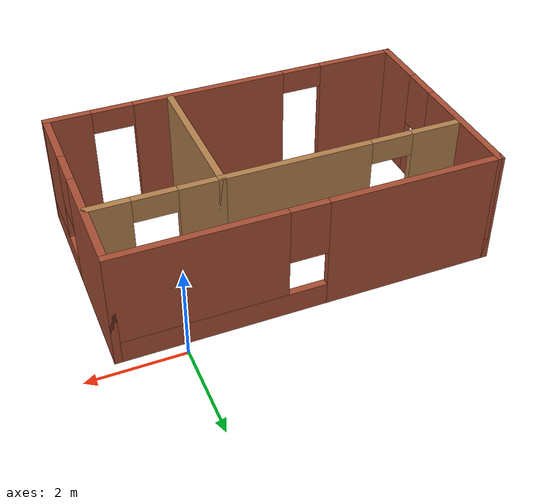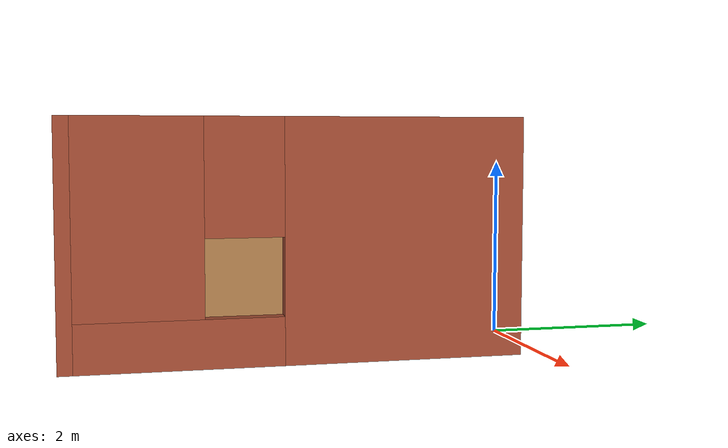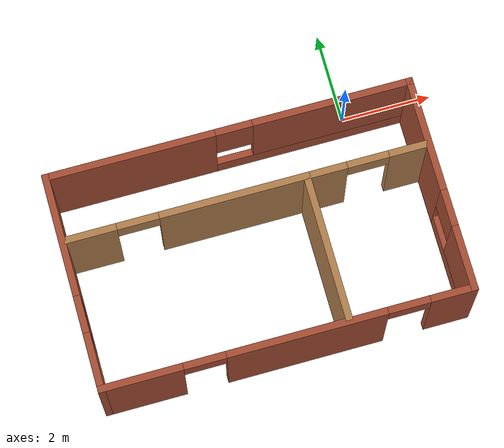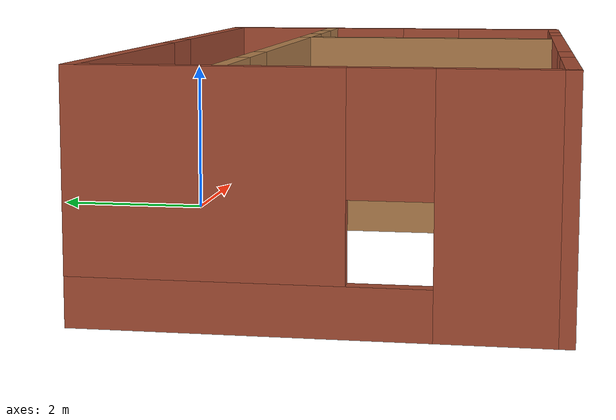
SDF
<?xml version='1.0'?>
<sdf version='1.7'>
  <model name='House'>
    <pose>-2.645 -2.4975 0 0 -0 0</pose>
    <link name='Wall_0'>
      <pose>0 2.1775 0 0 -0 0</pose>
      <visual name='Wall_0_Visual_0'>
        <pose>-2.1475 0 1.25 0 -0 0</pose>
        <geometry>
          <box>
            <size>3.705 0.15 2.5</size>
          </box>
        </geometry>
        <material>
          <script>
            <uri>file://media/materials/scripts/gazebo.material</uri>
            <name>Gazebo/Bricks</name>
          </script>
          <ambient>1 1 1 1</ambient>
        </material>
        <meta>
          <layer>0</layer>
        </meta>
      </visual>
      <collision name='Wall_0_Collision_0'>
        <geometry>
          <box>
            <size>3.705 0.15 2.5</size>
          </box>
        </geometry>
        <pose>-2.1475 0 1.25 0 -0 0</pose>
      </collision>
      <visual name='Wall_0_Visual_1'>
        <pose>1.8525 0 0.25 0 -0 0</pose>
        <geometry>
          <box>
            <size>4.295 0.15 0.5</size>
          </box>
        </geometry>
        <material>
          <script>
            <uri>file://media/materials/scripts/gazebo.material</uri>
            <name>Gazebo/Bricks</name>
          </script>
          <ambient>1 1 1 1</ambient>
        </material>
        <meta>
          <layer>0</layer>
        </meta>
      </visual>
      <collision name='Wall_0_Collision_1'>
        <geometry>
          <box>
            <size>4.295 0.15 0.5</size>
          </box>
        </geometry>
        <pose>1.8525 0 0.25 0 -0 0</pose>
      </collision>
      <visual name='Wall_0_Visual_2'>
        <pose>2.2525 0 1.5 0 -0 0</pose>
        <geometry>
          <box>
            <size>3.495 0.15 2</size>
          </box>
        </geometry>
        <material>
          <script>
            <uri>file://media/materials/scripts/gazebo.material</uri>
            <name>Gazebo/Bricks</name>
          </script>
          <ambient>1 1 1 1</ambient>
        </material>
        <meta>
          <layer>0</layer>
        </meta>
      </visual>
      <collision name='Wall_0_Collision_2'>
        <geometry>
          <box>
            <size>3.495 0.15 2</size>
          </box>
        </geometry>
        <pose>2.2525 0 1.5 0 -0 0</pose>
      </collision>
      <visual name='Wall_0_Visual_3'>
        <pose>0.105 0 1.9 0 -0 0</pose>
        <geometry>
          <box>
            <size>0.8 0.15 1.2</size>
          </box>
        </geometry>
        <material>
          <script>
            <uri>file://media/materials/scripts/gazebo.material</uri>
            <name>Gazebo/Bricks</name>
          </script>
          <ambient>1 1 1 1</ambient>
        </material>
        <meta>
          <layer>0</layer>
        </meta>
      </visual>
      <collision name='Wall_0_Collision_3'>
        <geometry>
          <box>
            <size>0.8 0.15 1.2</size>
          </box>
        </geometry>
        <pose>0.105 0 1.9 0 -0 0</pose>
      </collision>
    </link>
    <link name='Wall_1'>
      <pose>3.925 -0.1225 0 0 -0 -1.5708</pose>
      <visual name='Wall_1_Visual_0'>
        <pose>-1.1125 0 1.25 0 -0 0</pose>
        <geometry>
          <box>
            <size>2.525 0.15 2.5</size>
          </box>
        </geometry>
        <material>
          <script>
            <uri>file://media/materials/scripts/gazebo.material</uri>
            <name>Gazebo/Bricks</name>
          </script>
          <ambient>1 1 1 1</ambient>
        </material>
        <meta>
          <layer>0</layer>
        </meta>
      </visual>
      <collision name='Wall_1_Collision_0'>
        <geometry>
          <box>
            <size>2.525 0.15 2.5</size>
          </box>
        </geometry>
        <pose>-1.1125 0 1.25 0 -0 0</pose>
      </collision>
      <visual name='Wall_1_Visual_1'>
        <pose>1.2625 0 0.25 0 -0 0</pose>
        <geometry>
          <box>
            <size>2.225 0.15 0.5</size>
          </box>
        </geometry>
        <material>
          <script>
            <uri>file://media/materials/scripts/gazebo.material</uri>
            <name>Gazebo/Bricks</name>
          </script>
          <ambient>1 1 1 1</ambient>
        </material>
        <meta>
          <layer>0</layer>
        </meta>
      </visual>
      <collision name='Wall_1_Collision_1'>
        <geometry>
          <box>
            <size>2.225 0.15 0.5</size>
          </box>
        </geometry>
        <pose>1.2625 0 0.25 0 -0 0</pose>
      </collision>
      <visual name='Wall_1_Visual_2'>
        <pose>1.6625 0 1.5 0 -0 0</pose>
        <geometry>
          <box>
            <size>1.425 0.15 2</size>
          </box>
        </geometry>
        <material>
          <script>
            <uri>file://media/materials/scripts/gazebo.material</uri>
            <name>Gazebo/Bricks</name>
          </script>
          <ambient>1 1 1 1</ambient>
        </material>
        <meta>
          <layer>0</layer>
        </meta>
      </visual>
      <collision name='Wall_1_Collision_2'>
        <geometry>
          <box>
            <size>1.425 0.15 2</size>
          </box>
        </geometry>
        <pose>1.6625 0 1.5 0 -0 0</pose>
      </collision>
      <visual name='Wall_1_Visual_3'>
        <pose>0.55 0 1.9 0 -0 0</pose>
        <geometry>
          <box>
            <size>0.8 0.15 1.2</size>
          </box>
        </geometry>
        <material>
          <script>
            <uri>file://media/materials/scripts/gazebo.material</uri>
            <name>Gazebo/Bricks</name>
          </script>
          <ambient>1 1 1 1</ambient>
        </material>
        <meta>
          <layer>0</layer>
        </meta>
      </visual>
      <collision name='Wall_1_Collision_3'>
        <geometry>
          <box>
            <size>0.8 0.15 1.2</size>
          </box>
        </geometry>
        <pose>0.55 0 1.9 0 -0 0</pose>
      </collision>
    </link>
    <link name='Wall_2'>
      <pose>0 -2.4225 0 0 -0 3.14159</pose>
      <visual name='Wall_2_Visual_0'>
        <pose>-3.4975 0 1.25 0 -0 0</pose>
        <geometry>
          <box>
            <size>1.005 0.15 2.5</size>
          </box>
        </geometry>
        <material>
          <script>
            <uri>file://media/materials/scripts/gazebo.material</uri>
            <name>Gazebo/Bricks</name>
          </script>
          <ambient>1 1 1 1</ambient>
        </material>
        <meta>
          <layer>0</layer>
        </meta>
      </visual>
      <collision name='Wall_2_Collision_0'>
        <geometry>
          <box>
            <size>1.005 0.15 2.5</size>
          </box>
        </geometry>
        <pose>-3.4975 0 1.25 0 -0 0</pose>
      </collision>
      <visual name='Wall_2_Visual_1'>
        <pose>-0.39 0 1.25 0 -0 0</pose>
        <geometry>
          <box>
            <size>3.41 0.15 2.5</size>
          </box>
        </geometry>
        <material>
          <script>
            <uri>file://media/materials/scripts/gazebo.material</uri>
            <name>Gazebo/Bricks</name>
          </script>
          <ambient>1 1 1 1</ambient>
        </material>
        <meta>
          <layer>0</layer>
        </meta>
      </visual>
      <collision name='Wall_2_Collision_1'>
        <geometry>
          <box>
            <size>3.41 0.15 2.5</size>
          </box>
        </geometry>
        <pose>-0.39 0 1.25 0 -0 0</pose>
      </collision>
      <visual name='Wall_2_Visual_2'>
        <pose>3.1075 0 1.25 0 -0 0</pose>
        <geometry>
          <box>
            <size>1.785 0.15 2.5</size>
          </box>
        </geometry>
        <material>
          <script>
            <uri>file://media/materials/scripts/gazebo.material</uri>
            <name>Gazebo/Bricks</name>
          </script>
          <ambient>1 1 1 1</ambient>
        </material>
        <meta>
          <layer>0</layer>
        </meta>
      </visual>
      <collision name='Wall_2_Collision_2'>
        <geometry>
          <box>
            <size>1.785 0.15 2.5</size>
          </box>
        </geometry>
        <pose>3.1075 0 1.25 0 -0 0</pose>
      </collision>
      <visual name='Wall_2_Visual_3'>
        <pose>-2.545 0 2.25 0 -0 0</pose>
        <geometry>
          <box>
            <size>0.9 0.15 0.5</size>
          </box>
        </geometry>
        <material>
          <script>
            <uri>file://media/materials/scripts/gazebo.material</uri>
            <name>Gazebo/Bricks</name>
          </script>
          <ambient>1 1 1 1</ambient>
        </material>
        <meta>
          <layer>0</layer>
        </meta>
      </visual>
      <collision name='Wall_2_Collision_3'>
        <geometry>
          <box>
            <size>0.9 0.15 0.5</size>
          </box>
        </geometry>
        <pose>-2.545 0 2.25 0 -0 0</pose>
      </collision>
      <visual name='Wall_2_Visual_4'>
        <pose>1.765 0 2.25 0 -0 0</pose>
        <geometry>
          <box>
            <size>0.9 0.15 0.5</size>
          </box>
        </geometry>
        <material>
          <script>
            <uri>file://media/materials/scripts/gazebo.material</uri>
            <name>Gazebo/Bricks</name>
          </script>
          <ambient>1 1 1 1</ambient>
        </material>
        <meta>
          <layer>0</layer>
        </meta>
      </visual>
      <collision name='Wall_2_Collision_4'>
        <geometry>
          <box>
            <size>0.9 0.15 0.5</size>
          </box>
        </geometry>
        <pose>1.765 0 2.25 0 -0 0</pose>
      </collision>
    </link>
    <link name='Wall_3'>
      <pose>-3.925 -0.1225 0 0 -0 1.5708</pose>
      <visual name='Wall_3_Visual_0'>
        <pose>-1.7375 0 1.25 0 -0 0</pose>
        <geometry>
          <box>
            <size>1.275 0.15 2.5</size>
          </box>
        </geometry>
        <material>
          <script>
            <uri>file://media/materials/scripts/gazebo.material</uri>
            <name>Gazebo/Bricks</name>
          </script>
          <ambient>1 1 1 1</ambient>
        </material>
        <meta>
          <layer>0</layer>
        </meta>
      </visual>
      <collision name='Wall_3_Collision_0'>
        <geometry>
          <box>
            <size>1.275 0.15 2.5</size>
          </box>
        </geometry>
        <pose>-1.7375 0 1.25 0 -0 0</pose>
      </collision>
      <visual name='Wall_3_Visual_1'>
        <pose>0.6375 0 0.25 0 -0 0</pose>
        <geometry>
          <box>
            <size>3.475 0.15 0.5</size>
          </box>
        </geometry>
        <material>
          <script>
            <uri>file://media/materials/scripts/gazebo.material</uri>
            <name>Gazebo/Bricks</name>
          </script>
          <ambient>1 1 1 1</ambient>
        </material>
        <meta>
          <layer>0</layer>
        </meta>
      </visual>
      <collision name='Wall_3_Collision_1'>
        <geometry>
          <box>
            <size>3.475 0.15 0.5</size>
          </box>
        </geometry>
        <pose>0.6375 0 0.25 0 -0 0</pose>
      </collision>
      <visual name='Wall_3_Visual_2'>
        <pose>1.0375 0 1.5 0 -0 0</pose>
        <geometry>
          <box>
            <size>2.675 0.15 2</size>
          </box>
        </geometry>
        <material>
          <script>
            <uri>file://media/materials/scripts/gazebo.material</uri>
            <name>Gazebo/Bricks</name>
          </script>
          <ambient>1 1 1 1</ambient>
        </material>
        <meta>
          <layer>0</layer>
        </meta>
      </visual>
      <collision name='Wall_3_Collision_2'>
        <geometry>
          <box>
            <size>2.675 0.15 2</size>
          </box>
        </geometry>
        <pose>1.0375 0 1.5 0 -0 0</pose>
      </collision>
      <visual name='Wall_3_Visual_3'>
        <pose>-0.7 0 1.9 0 -0 0</pose>
        <geometry>
          <box>
            <size>0.8 0.15 1.2</size>
          </box>
        </geometry>
        <material>
          <script>
            <uri>file://media/materials/scripts/gazebo.material</uri>
            <name>Gazebo/Bricks</name>
          </script>
          <ambient>1 1 1 1</ambient>
        </material>
        <meta>
          <layer>0</layer>
        </meta>
      </visual>
      <collision name='Wall_3_Collision_3'>
        <geometry>
          <box>
            <size>0.8 0.15 1.2</size>
          </box>
        </geometry>
        <pose>-0.7 0 1.9 0 -0 0</pose>
      </collision>
    </link>
    <link name='Wall_5'>
      <collision name='Wall_5_Collision'>
        <geometry>
          <box>
            <size>3.25 0.15 2.5</size>
          </box>
        </geometry>
        <pose>0 0 1.25 0 -0 0</pose>
      </collision>
      <visual name='Wall_5_Visual'>
        <pose>0 0 1.25 0 -0 0</pose>
        <geometry>
          <box>
            <size>3.25 0.15 2.5</size>
          </box>
        </geometry>
        <material>
          <script>
            <uri>file://media/materials/scripts/gazebo.material</uri>
            <name>Gazebo/Wood</name>
          </script>
          <ambient>1 1 1 1</ambient>
        </material>
        <meta>
          <layer>0</layer>
        </meta>
      </visual>
      <pose>1.285 -0.7825 0 0 -0 1.5708</pose>
    </link>
    <link name='Wall_6'>
      <pose>-1.265 0.7675 0 0 -0 3.14159</pose>
      <visual name='Wall_6_Visual_0'>
        <pose>-1.0075 0 1.25 0 -0 0</pose>
        <geometry>
          <box>
            <size>3.235 0.15 2.5</size>
          </box>
        </geometry>
        <material>
          <script>
            <uri>file://media/materials/scripts/gazebo.material</uri>
            <name>Gazebo/Wood</name>
          </script>
          <ambient>1 1 1 1</ambient>
        </material>
        <meta>
          <layer>0</layer>
        </meta>
      </visual>
      <collision name='Wall_6_Collision_0'>
        <geometry>
          <box>
            <size>3.235 0.15 2.5</size>
          </box>
        </geometry>
        <pose>-1.0075 0 1.25 0 -0 0</pose>
      </collision>
      <visual name='Wall_6_Visual_1'>
        <pose>2.0675 0 1.25 0 -0 0</pose>
        <geometry>
          <box>
            <size>1.115 0.15 2.5</size>
          </box>
        </geometry>
        <material>
          <script>
            <uri>file://media/materials/scripts/gazebo.material</uri>
            <name>Gazebo/Wood</name>
          </script>
          <ambient>1 1 1 1</ambient>
        </material>
        <meta>
          <layer>0</layer>
        </meta>
      </visual>
      <collision name='Wall_6_Collision_1'>
        <geometry>
          <box>
            <size>1.115 0.15 2.5</size>
          </box>
        </geometry>
        <pose>2.0675 0 1.25 0 -0 0</pose>
      </collision>
      <visual name='Wall_6_Visual_2'>
        <pose>1.06 0 2.25 0 -0 0</pose>
        <geometry>
          <box>
            <size>0.9 0.15 0.5</size>
          </box>
        </geometry>
        <material>
          <script>
            <uri>file://media/materials/scripts/gazebo.material</uri>
            <name>Gazebo/Wood</name>
          </script>
          <ambient>1 1 1 1</ambient>
        </material>
        <meta>
          <layer>0</layer>
        </meta>
      </visual>
      <collision name='Wall_6_Collision_2'>
        <geometry>
          <box>
            <size>0.9 0.15 0.5</size>
          </box>
        </geometry>
        <pose>1.06 0 2.25 0 -0 0</pose>
      </collision>
    </link>
    <link name='Wall_8'>
      <pose>2.585 0.7675 0 0 -0 0</pose>
      <visual name='Wall_8_Visual_0'>
        <pose>-0.9025 0 1.25 0 -0 0</pose>
        <geometry>
          <box>
            <size>0.945 0.15 2.5</size>
          </box>
        </geometry>
        <material>
          <script>
            <uri>file://media/materials/scripts/gazebo.material</uri>
            <name>Gazebo/Wood</name>
          </script>
          <ambient>1 1 1 1</ambient>
        </material>
        <meta>
          <layer>0</layer>
        </meta>
      </visual>
      <collision name='Wall_8_Collision_0'>
        <geometry>
          <box>
            <size>0.945 0.15 2.5</size>
          </box>
        </geometry>
        <pose>-0.9025 0 1.25 0 -0 0</pose>
      </collision>
      <visual name='Wall_8_Visual_1'>
        <pose>0.9225 0 1.25 0 -0 0</pose>
        <geometry>
          <box>
            <size>0.905 0.15 2.5</size>
          </box>
        </geometry>
        <material>
          <script>
            <uri>file://media/materials/scripts/gazebo.material</uri>
            <name>Gazebo/Wood</name>
          </script>
          <ambient>1 1 1 1</ambient>
        </material>
        <meta>
          <layer>0</layer>
        </meta>
      </visual>
      <collision name='Wall_8_Collision_1'>
        <geometry>
          <box>
            <size>0.905 0.15 2.5</size>
          </box>
        </geometry>
        <pose>0.9225 0 1.25 0 -0 0</pose>
      </collision>
      <visual name='Wall_8_Visual_2'>
        <pose>0.02 0 2.25 0 -0 0</pose>
        <geometry>
          <box>
            <size>0.9 0.15 0.5</size>
          </box>
        </geometry>
        <material>
          <script>
            <uri>file://media/materials/scripts/gazebo.material</uri>
            <name>Gazebo/Wood</name>
          </script>
          <ambient>1 1 1 1</ambient>
        </material>
        <meta>
          <layer>0</layer>
        </meta>
      </visual>
      <collision name='Wall_8_Collision_2'>
        <geometry>
          <box>
            <size>0.9 0.15 0.5</size>
          </box>
        </geometry>
        <pose>0.02 0 2.25 0 -0 0</pose>
      </collision>
    </link>
    <static>1</static>
  </model>
</sdf>
